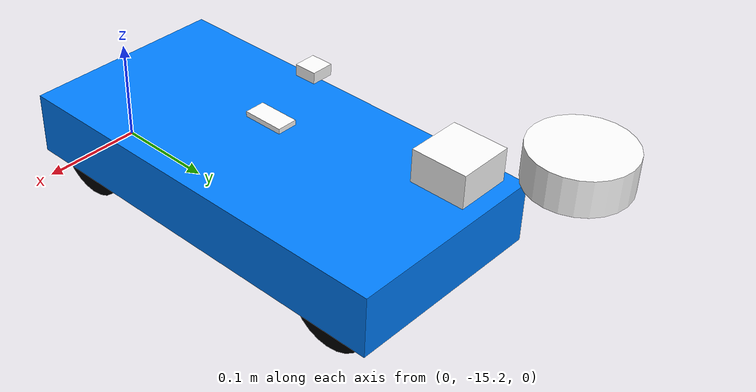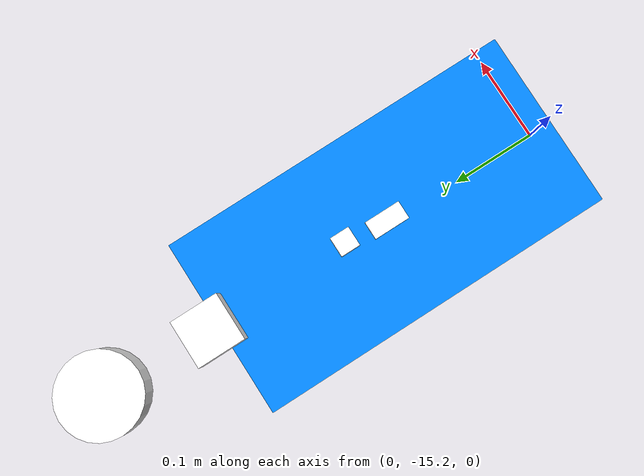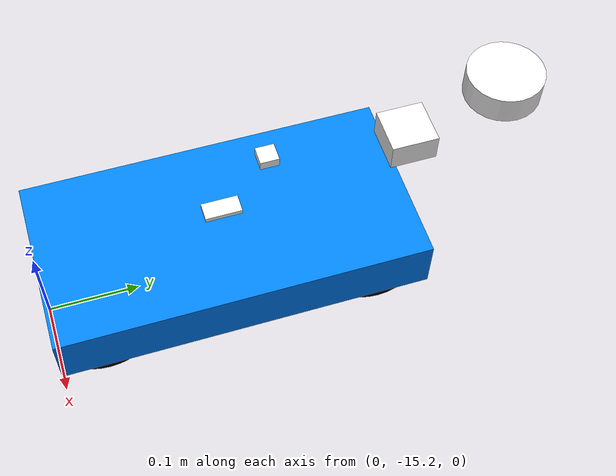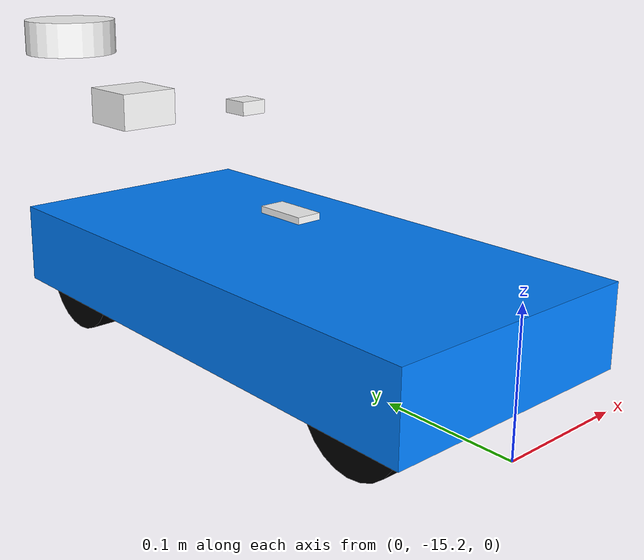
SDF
<sdf version="1.9">
 <world name="map">
  <plugin filename="gz-sim-sensors-system" name="gz::sim::systems::Sensors"/>
  <include>
   <uri>file:///home/xun/桌面/ros2_ws/ros2_ws/ros2_ws/percep_node+track/src/car_sim/urdf/car_sim.sdf</uri>
   <name>shixi_car</name>
   <pose>0   -15   0.06   0    0   1.5708</pose>
  </include>
 </world>
</sdf>

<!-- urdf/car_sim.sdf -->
<sdf version='1.11'>
  <model name='shixi_car'>
    <link name='base_link'>
      <inertial>
        <pose>0.0029268292682926851 0 0.0021463414634146361 0 0 0</pose>
        <mass>2.0499999999999989</mass>
        <inertia>
          <ixx>0.0077635560975609762</ixx>
          <ixy>0</ixy>
          <ixz>-0.00070712195121951224</ixz>
          <iyy>0.033245995121951213</iyy>
          <iyz>0</iyz>
          <izz>0.038817439024390242</izz>
        </inertia>
      </inertial>
      <collision name='base_link_collision'>
        <pose>0 0 0 0 0 0</pose>
        <geometry>
          <box>
            <size>0.40000000000000002 0.20000000000000001 0.059999999999999998</size>
          </box>
        </geometry>
      </collision>
      <visual name='base_link_visual'>
        <pose>0 0 0 0 0 0</pose>
        <geometry>
          <box>
            <size>0.40000000000000002 0.20000000000000001 0.059999999999999998</size>
          </box>
        </geometry>
        <material>
          <diffuse>0 0.5 1 1</diffuse>
          <ambient>0 0.5 1 1</ambient>
        </material>
      </visual>
      <visual name='base_link_fixed_joint_lump__camera_link_visual_1'>
        <pose>0.20000000000000001 0 0.10000000000000001 0 0 0</pose>
        <geometry>
          <box>
            <size>0.050000000000000003 0.050000000000000003 0.029999999999999999</size>
          </box>
        </geometry>
        <material>
          <diffuse>1 1 1 1</diffuse>
          <ambient>1 1 1 1</ambient>
        </material>
      </visual>
      <visual name='base_link_fixed_joint_lump__gps_link_visual_2'>
        <pose>0 0 0.050000000000000003 0 0 0</pose>
        <geometry>
          <box>
            <size>0.040000000000000001 0.02 0.0050000000000000001</size>
          </box>
        </geometry>
        <material>
          <diffuse>1 1 1 1</diffuse>
          <ambient>1 1 1 1</ambient>
        </material>
      </visual>
      <visual name='base_link_fixed_joint_lump__imu_link_visual_3'>
        <pose>0.050000000000000003 0 0.02 0 0 0</pose>
        <geometry>
          <box>
            <size>0.029999999999999999 0.029999999999999999 0.01</size>
          </box>
        </geometry>
        <material>
          <diffuse>1 1 1 1</diffuse>
          <ambient>1 1 1 1</ambient>
        </material>
      </visual>
      <visual name='base_link_fixed_joint_lump__lidar_link_visual_4'>
        <pose>0.29999999999999999 0 0.14999999999999999 0 0 0</pose>
        <geometry>
          <cylinder>
            <length>0.029999999999999999</length>
            <radius>0.040000000000000001</radius>
          </cylinder>
        </geometry>
        <material>
          <diffuse>1 1 1 1</diffuse>
          <ambient>1 1 1 1</ambient>
        </material>
      </visual>
      <visual name='base_link_fixed_joint_lump__magnetometer_link_visual_5'>
        <pose>0.050000000000000003 0 0.12 0 0 0</pose>
        <geometry>
          <box>
            <size>0.02 0.02 0.01</size>
          </box>
        </geometry>
        <material>
          <diffuse>1 1 1 1</diffuse>
          <ambient>1 1 1 1</ambient>
        </material>
      </visual>
      <sensor name='camera' type='camera'>
        <always_on>true</always_on>
        <update_rate>30</update_rate>
        <camera>
          <image>
            <width>640</width>
            <height>480</height>
            <format>R8G8B8</format>
          </image>
          <distortion>
            <k1>0</k1>
            <k2>0</k2>
            <k3>0</k3>
            <p1>0</p1>
            <p2>0</p2>
            <model>plumb_bob</model>
            <k4>0.0</k4>
            <k5>0.0</k5>
          </distortion>
          <horizontal_fov>1.0469999999999999</horizontal_fov>
          <clip>
            <near>0.10000000000000001</near>
            <far>100</far>
          </clip>
        </camera>
        <pose>0.20000000000000001 0 0.10000000000000001 0 0 0</pose>
      </sensor>
      <sensor name='gps' type='gps'>
        <always_on>true</always_on>
        <update_rate>10</update_rate>
        <pose>0 0 0.050000000000000003 0 0 0</pose>
        <gps/>
      </sensor>
      <sensor name='imu' type='imu'>
        <always_on>true</always_on>
        <update_rate>10</update_rate>
        <imu>
          <angular_velocity>
            <x>
              <noise type='none'/>
            </x>
            <y>
              <noise type='none'/>
            </y>
            <z>
              <noise type='none'/>
            </z>
          </angular_velocity>
          <linear_acceleration>
            <x>
              <noise type='none'/>
            </x>
            <y>
              <noise type='none'/>
            </y>
            <z>
              <noise type='none'/>
            </z>
          </linear_acceleration>
        </imu>
        <pose>0.050000000000000003 0 0.02 0 0 0</pose>
      </sensor>
      <sensor name='lidar' type='gpu_lidar'>
        <always_on>true</always_on>
        <update_rate>10</update_rate>
        <lidar>
          <scan>
            <horizontal>
              <samples>360</samples>
              <resolution>1</resolution>
              <min_angle>-3.1415899999999999</min_angle>
              <max_angle>3.1415899999999999</max_angle>
            </horizontal>
            <vertical>
              <samples>1</samples>
              <resolution>0.10000000000000001</resolution>
              <min_angle>-0.52359880000000003</min_angle>
              <max_angle>0.52359880000000003</max_angle>
            </vertical>
          </scan>
          <range>
            <min>0.10000000000000001</min>
            <max>10</max>
            <resolution>0.01</resolution>
          </range>
        </lidar>
        <pose>0.29999999999999999 0 0.14999999999999999 0 0 0</pose>
      </sensor>
      <sensor name='magnetometer' type='magnetometer'>
        <always_on>true</always_on>
        <update_rate>10</update_rate>
        <pose>0.050000000000000003 0 0.12 0 0 0</pose>
        <magnetometer/>
      </sensor>
    </link>
    <joint name='fl_wheel_joint' type='revolute'>
      <pose relative_to='base_link'>0.14999999999999999 0.074999999999999997 -0.02 0 0 0</pose>
      <parent>base_link</parent>
      <child>fl_wheel_link</child>
      <axis>
        <xyz>0 1 0</xyz>
        <limit>
          <lower>-inf</lower>
          <upper>inf</upper>
        </limit>
        <dynamics>
          <damping>0.050000000000000003</damping>
          <friction>0.10000000000000001</friction>
          <spring_reference>0</spring_reference>
          <spring_stiffness>0</spring_stiffness>
        </dynamics>
      </axis>
    </joint>
    <link name='fl_wheel_link'>
      <pose relative_to='fl_wheel_joint'>0 0 0 0 0 0</pose>
      <inertial>
        <pose>0 0 0 0 0 0</pose>
        <mass>0.14999999999999999</mass>
        <inertia>
          <ixx>0.00012</ixx>
          <ixy>0</ixy>
          <ixz>0</ixz>
          <iyy>6.7999999999999999e-05</iyy>
          <iyz>0</iyz>
          <izz>6.7999999999999999e-05</izz>
        </inertia>
      </inertial>
      <collision name='fl_wheel_link_collision'>
        <pose>0 0 0 1.5708 0 0</pose>
        <geometry>
          <cylinder>
            <length>0.025000000000000001</length>
            <radius>0.040000000000000001</radius>
          </cylinder>
        </geometry>
      </collision>
      <visual name='fl_wheel_link_visual'>
        <pose>0 0 0 1.5708 0 0</pose>
        <geometry>
          <cylinder>
            <length>0.025000000000000001</length>
            <radius>0.040000000000000001</radius>
          </cylinder>
        </geometry>
        <material>
          <diffuse>0 0 0 1</diffuse>
          <ambient>0 0 0 1</ambient>
        </material>
      </visual>
    </link>
    <joint name='fr_wheel_joint' type='revolute'>
      <pose relative_to='base_link'>0.14999999999999999 -0.074999999999999997 -0.02 0 0 0</pose>
      <parent>base_link</parent>
      <child>fr_wheel_link</child>
      <axis>
        <xyz>0 1 0</xyz>
        <limit>
          <lower>-inf</lower>
          <upper>inf</upper>
        </limit>
        <dynamics>
          <damping>0.050000000000000003</damping>
          <friction>0.10000000000000001</friction>
          <spring_reference>0</spring_reference>
          <spring_stiffness>0</spring_stiffness>
        </dynamics>
      </axis>
    </joint>
    <link name='fr_wheel_link'>
      <pose relative_to='fr_wheel_joint'>0 0 0 0 0 0</pose>
      <inertial>
        <pose>0 0 0 0 0 0</pose>
        <mass>0.14999999999999999</mass>
        <inertia>
          <ixx>0.00012</ixx>
          <ixy>0</ixy>
          <ixz>0</ixz>
          <iyy>6.7999999999999999e-05</iyy>
          <iyz>0</iyz>
          <izz>6.7999999999999999e-05</izz>
        </inertia>
      </inertial>
      <collision name='fr_wheel_link_collision'>
        <pose>0 0 0 1.5708 0 0</pose>
        <geometry>
          <cylinder>
            <length>0.025000000000000001</length>
            <radius>0.040000000000000001</radius>
          </cylinder>
        </geometry>
      </collision>
      <visual name='fr_wheel_link_visual'>
        <pose>0 0 0 1.5708 0 0</pose>
        <geometry>
          <cylinder>
            <length>0.025000000000000001</length>
            <radius>0.040000000000000001</radius>
          </cylinder>
        </geometry>
        <material>
          <diffuse>0 0 0 1</diffuse>
          <ambient>0 0 0 1</ambient>
        </material>
      </visual>
    </link>
    <joint name='rl_wheel_joint' type='revolute'>
      <pose relative_to='base_link'>-0.14999999999999999 0.074999999999999997 -0.02 0 0 0</pose>
      <parent>base_link</parent>
      <child>rl_wheel_link</child>
      <axis>
        <xyz>0 1 0</xyz>
        <limit>
          <lower>-inf</lower>
          <upper>inf</upper>
        </limit>
        <dynamics>
          <damping>0.050000000000000003</damping>
          <friction>0.10000000000000001</friction>
          <spring_reference>0</spring_reference>
          <spring_stiffness>0</spring_stiffness>
        </dynamics>
      </axis>
    </joint>
    <link name='rl_wheel_link'>
      <pose relative_to='rl_wheel_joint'>0 0 0 0 0 0</pose>
      <inertial>
        <pose>0 0 0 0 0 0</pose>
        <mass>0.14999999999999999</mass>
        <inertia>
          <ixx>0.00012</ixx>
          <ixy>0</ixy>
          <ixz>0</ixz>
          <iyy>6.7999999999999999e-05</iyy>
          <iyz>0</iyz>
          <izz>6.7999999999999999e-05</izz>
        </inertia>
      </inertial>
      <collision name='rl_wheel_link_collision'>
        <pose>0 0 0 1.5708 0 0</pose>
        <geometry>
          <cylinder>
            <length>0.025000000000000001</length>
            <radius>0.040000000000000001</radius>
          </cylinder>
        </geometry>
      </collision>
      <visual name='rl_wheel_link_visual'>
        <pose>0 0 0 1.5708 0 0</pose>
        <geometry>
          <cylinder>
            <length>0.025000000000000001</length>
            <radius>0.040000000000000001</radius>
          </cylinder>
        </geometry>
        <material>
          <diffuse>0 0 0 1</diffuse>
          <ambient>0 0 0 1</ambient>
        </material>
      </visual>
    </link>
    <joint name='rr_wheel_joint' type='revolute'>
      <pose relative_to='base_link'>-0.14999999999999999 -0.074999999999999997 -0.02 0 0 0</pose>
      <parent>base_link</parent>
      <child>rr_wheel_link</child>
      <axis>
        <xyz>0 1 0</xyz>
        <limit>
          <lower>-inf</lower>
          <upper>inf</upper>
        </limit>
        <dynamics>
          <damping>0.050000000000000003</damping>
          <friction>0.10000000000000001</friction>
          <spring_reference>0</spring_reference>
          <spring_stiffness>0</spring_stiffness>
        </dynamics>
      </axis>
    </joint>
    <link name='rr_wheel_link'>
      <pose relative_to='rr_wheel_joint'>0 0 0 0 0 0</pose>
      <inertial>
        <pose>0 0 0 0 0 0</pose>
        <mass>0.14999999999999999</mass>
        <inertia>
          <ixx>0.00012</ixx>
          <ixy>0</ixy>
          <ixz>0</ixz>
          <iyy>6.7999999999999999e-05</iyy>
          <iyz>0</iyz>
          <izz>6.7999999999999999e-05</izz>
        </inertia>
      </inertial>
      <collision name='rr_wheel_link_collision'>
        <pose>0 0 0 1.5708 0 0</pose>
        <geometry>
          <cylinder>
            <length>0.025000000000000001</length>
            <radius>0.040000000000000001</radius>
          </cylinder>
        </geometry>
      </collision>
      <visual name='rr_wheel_link_visual'>
        <pose>0 0 0 1.5708 0 0</pose>
        <geometry>
          <cylinder>
            <length>0.025000000000000001</length>
            <radius>0.040000000000000001</radius>
          </cylinder>
        </geometry>
        <material>
          <diffuse>0 0 0 1</diffuse>
          <ambient>0 0 0 1</ambient>
        </material>
      </visual>
    </link>
    <pose>0 -15 0.059999999999999998 0 0 1.5708</pose>
    <plugin name='gz::sim::systems::AckermannSteering' filename='gz-sim-ackermann-steering-system'>
      <topic>/model/shixi_car/cmd_vel</topic>
      <wheel_base>0.25</wheel_base>
      <wheel_track>0.15</wheel_track>
      <max_steering_angle>0.7</max_steering_angle>
      <wheel_radius>0.04</wheel_radius>
      <rear_left_joint>rl_wheel_joint</rear_left_joint>
      <rear_right_joint>rr_wheel_joint</rear_right_joint>
      <front_left_joint>fl_steering_joint</front_left_joint>
      <front_right_joint>fr_steering_joint</front_right_joint>
      <odom_topic>/model/shixi_car/odometry</odom_topic>
      <odom_frame>odom</odom_frame>
      <robot_base_frame>base_link</robot_base_frame>
      <update_rate>30.0</update_rate>
      <max_wheel_torque>20.0</max_wheel_torque>
      <max_wheel_acceleration>1.0</max_wheel_acceleration>
    </plugin>
    <frame name='camera_joint' attached_to='base_link'>
      <pose>0.20000000000000001 0 0.10000000000000001 0 0 0</pose>
    </frame>
    <frame name='camera_link' attached_to='camera_joint'>
      <pose>0 0 0 0 0 0</pose>
    </frame>
    <frame name='gps_joint' attached_to='base_link'>
      <pose>0 0 0.050000000000000003 0 0 0</pose>
    </frame>
    <frame name='gps_link' attached_to='gps_joint'>
      <pose>0 0 0 0 0 0</pose>
    </frame>
    <frame name='imu_joint' attached_to='base_link'>
      <pose>0.050000000000000003 0 0.02 0 0 0</pose>
    </frame>
    <frame name='imu_link' attached_to='imu_joint'>
      <pose>0 0 0 0 0 0</pose>
    </frame>
    <frame name='lidar_joint' attached_to='base_link'>
      <pose>0.29999999999999999 0 0.14999999999999999 0 0 0</pose>
    </frame>
    <frame name='lidar_link' attached_to='lidar_joint'>
      <pose>0 0 0 0 0 0</pose>
    </frame>
    <frame name='magnetometer_joint' attached_to='base_link'>
      <pose>0.050000000000000003 0 0.12 0 0 0</pose>
    </frame>
    <frame name='magnetometer_link' attached_to='magnetometer_joint'>
      <pose>0 0 0 0 0 0</pose>
    </frame>
  </model>
</sdf>
